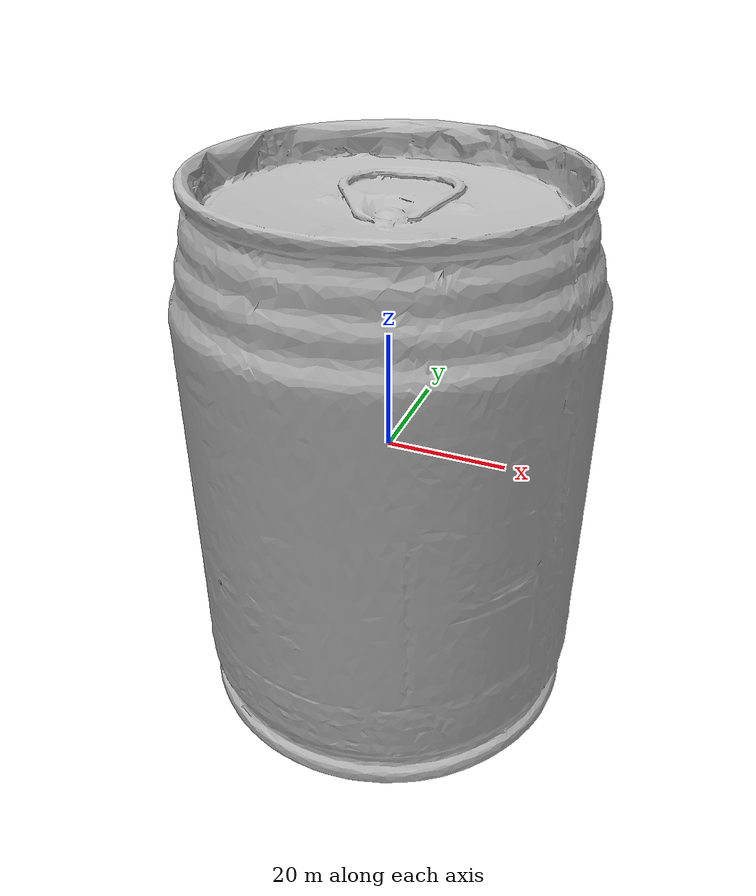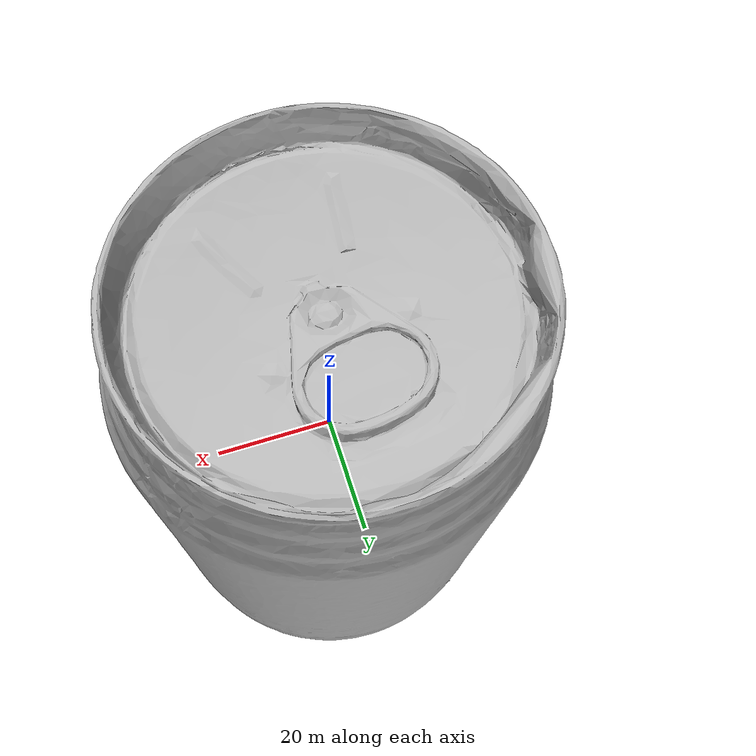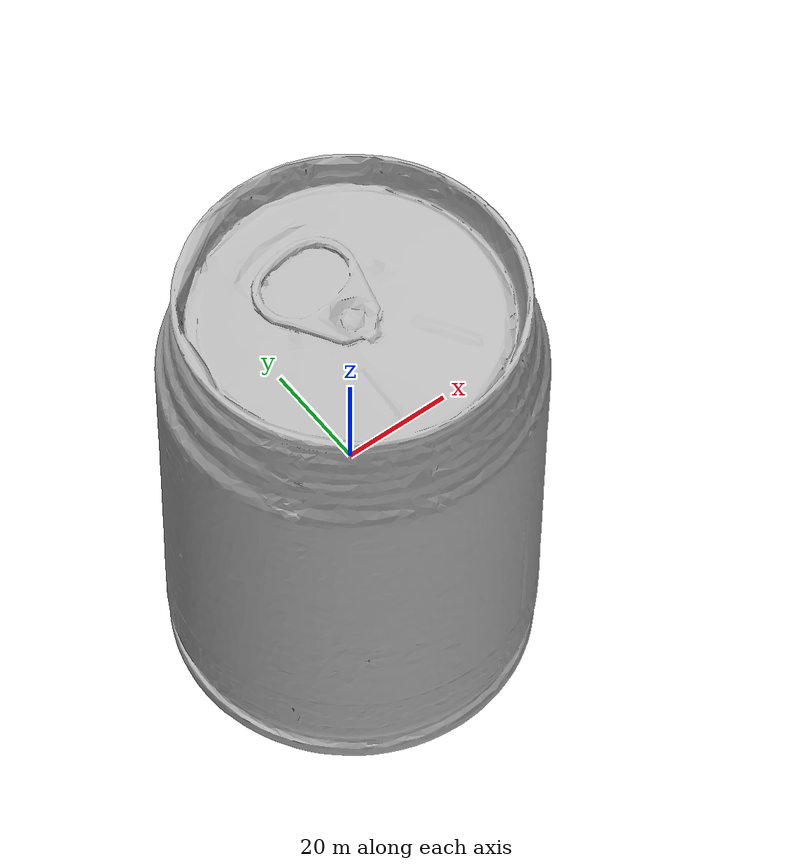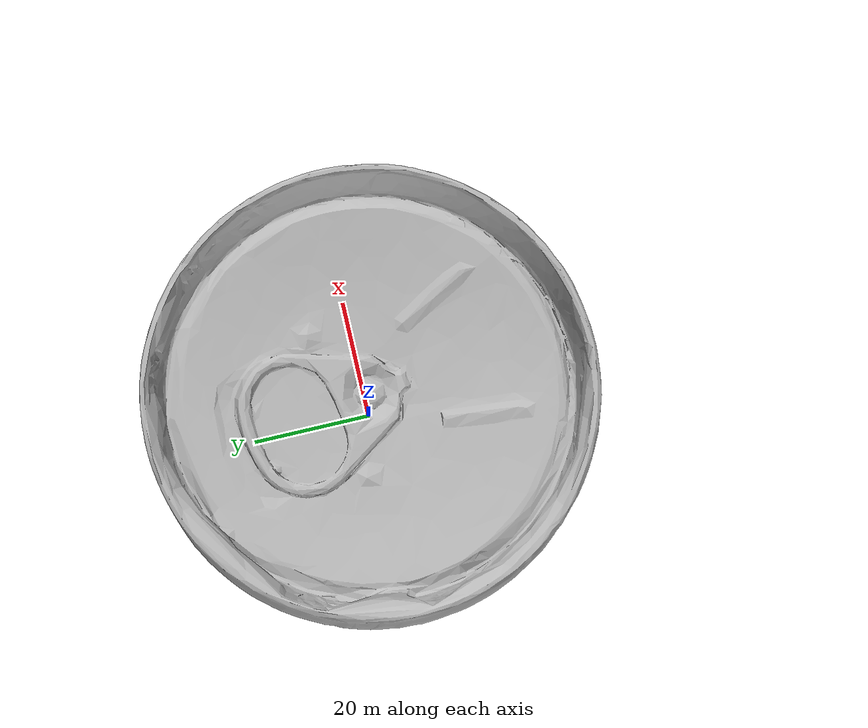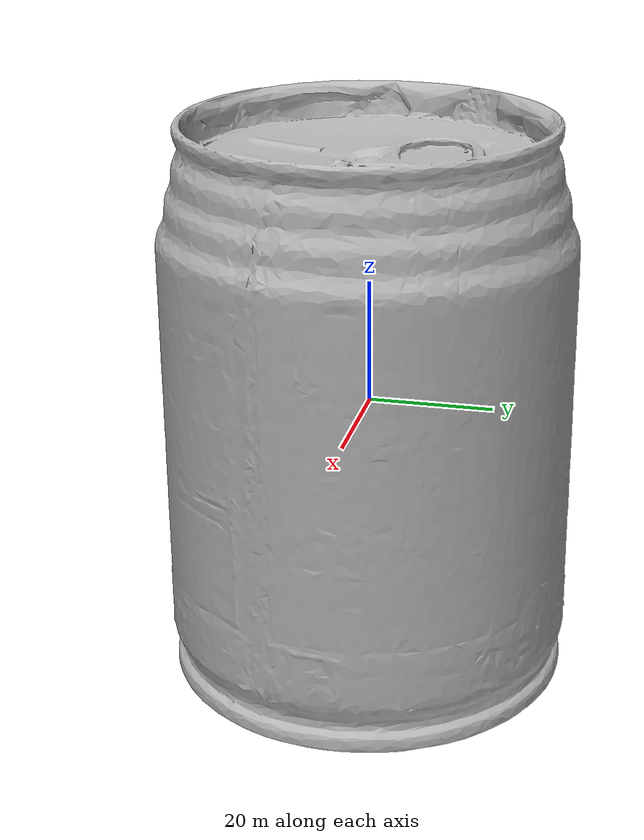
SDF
<sdf version="1.4">
 <world name="default">
  <light name="light1" type="point">
   <pose>0 0 1 0 0 0</pose>
   <diffuse>3 3 3 1</diffuse>
   <specular>3 3 3 1</specular>
  </light>
  <light name="light2" type="point">
   <pose>0 0.5 2 0 0 0</pose>
   <diffuse>1 1 1 1</diffuse>
   <specular>1 1 1 1</specular>
  </light>
  <light name="light3" type="point">
   <pose>0 0.5 2 0 0 0</pose>
   <diffuse>3 3 3 1</diffuse>
   <specular>3 3 3 1</specular>
  </light>
  <scene><ambient>0.7 0.7 0.7</ambient></scene>
  <model name="box1">
   <link name="link_box1">
    <collision name="default">
     <geometry>
      <mesh><uri>model://wooden_puzzle1/collision_meshes/collision.obj</uri><scale>1.0 1.0 1.0</scale></mesh>
     </geometry>
     <surface>
      <friction><ode><mu>0.5</mu><mu2>0.5</mu2></ode></friction>
      <contact><ode><max_vel>0</max_vel><min_depth>0.0001</min_depth><kp>1e8</kp></ode></contact>
     </surface>
    </collision>
    <visual name="default">
     <geometry>
      <mesh><uri>model://wooden_puzzle1/visual_meshes/visual.dae</uri><scale>1.0 1.0 1.0</scale></mesh>
     </geometry>
    </visual>
    <inertial>
     <mass>0.020629532635211945</mass>
     <pose>-0.0001735068071866408 7.972260937094688e-05 -9.191555000143126e-05 -0.07784798349428995 -0.2636160818751574 -0.552872324185161</pose>
     <inertia>
      <ixx>3.8922285e-06</ixx>
      <iyy>3.817302e-06</iyy>
      <izz>3.8628423e-06</izz>
      <ixy>0</ixy>
      <ixz>0</ixz>
      <iyz>0</iyz>
     </inertia>
    </inertial>
   </link>
   <pose>-0.0830574631690979 0.328857958316803 0.016802020370960236 0.010512081983216482 -0.009455384265388582 -1.569543781892002</pose>
  </model>
  <model name="box3">
   <link name="link_box3">
    <collision name="default">
     <geometry>
      <mesh><uri>model://wooden_puzzle2/collision_meshes/collision.obj</uri><scale>1.0 1.0 1.0</scale></mesh>
     </geometry>
     <surface>
      <friction><ode><mu>0.5</mu><mu2>0.5</mu2></ode></friction>
      <contact><ode><max_vel>0</max_vel><min_depth>0.0001</min_depth><kp>1e8</kp></ode></contact>
     </surface>
    </collision>
    <visual name="default">
     <geometry>
      <mesh><uri>model://wooden_puzzle2/visual_meshes/visual.dae</uri><scale>1.0 1.0 1.0</scale></mesh>
     </geometry>
    </visual>
    <inertial>
     <mass>0.05583015829324722</mass>
     <pose>2.7402536943554878e-05 4.997663199901581e-05 6.587122334167361e-05 -0.19203199902598803 0.6112853789707493 -0.6338693450254121</pose>
     <inertia>
      <ixx>1.0378231e-05</ixx>
      <iyy>1.06642165e-05</iyy>
      <izz>1.0512509e-05</izz>
      <ixy>0</ixy>
      <ixz>0</ixz>
      <iyz>0</iyz>
     </inertia>
    </inertial>
   </link>
   <pose>-0.03202073648571968 -0.1198330745100975 0.016917727887630463 0.020848355151532168 0.0007213462546874209 -0.8381139591288981</pose>
  </model>
  <model name="can1">
   <link name="link_can1">
    <collision name="default">
     <geometry>
      <mesh><uri>model://pepsi/collision_meshes/collision.obj</uri><scale>1.0 1.0 1.0</scale></mesh>
     </geometry>
     <surface>
      <friction><ode><mu>0.5</mu><mu2>0.5</mu2></ode></friction>
      <contact><ode><max_vel>0</max_vel><min_depth>0.0001</min_depth><kp>1e8</kp></ode></contact>
     </surface>
    </collision>
    <visual name="default">
     <geometry><mesh><uri>model://pepsi/visual_meshes/visual.dae</uri><scale>1.0 1.0 1.0</scale></mesh></geometry>
    </visual>
    <inertial>
     <mass>0.49348899722099304</mass>
     <pose>-7.5590331107378e-05 2.9931279641459696e-05 -0.0003384356386959553 -0.0010677622415870868 -0.0021735774955872703 0.5673701275352521</pose>
     <inertia>
      <ixx>0.0009831247</ixx>
      <iyy>0.0009824084</iyy>
      <izz>0.00020924417</izz>
      <ixy>0</ixy>
      <ixz>0</ixz>
      <iyz>0</iyz>
     </inertia>
    </inertial>
   </link>
   <pose>0.0013373123947530985 0.02424326352775097 0.07449635118246078 -1.962261197195149e-05 2.001345981244164e-06 2.555929531256068</pose>
  </model>
  <model name="can2">
   <link name="link_can2">
    <collision name="default">
     <geometry>
      <mesh><uri>model://redbull/collision_meshes/collision.obj</uri><scale>1.0 1.0 1.0</scale></mesh>
     </geometry>
     <surface>
      <friction><ode><mu>0.5</mu><mu2>0.5</mu2></ode></friction>
      <contact><ode><max_vel>0</max_vel><min_depth>0.0001</min_depth><kp>1e8</kp></ode></contact>
     </surface>
    </collision>
    <visual name="default">
     <geometry>
      <mesh><uri>model://redbull/visual_meshes/visual.dae</uri><scale>1.0 1.0 1.0</scale></mesh>
     </geometry>
    </visual>
    <inertial>
     <mass>0.3443465232849121</mass>
     <pose>-2.2127078409539536e-05 -0.00012659528874792159 -0.0006860987632535398 0.0011367237692686564 -0.010800964902263904 0.5859097418646089</pose>
     <inertia>
      <ixx>0.0003237599</ixx>
      <iyy>0.00032403314</iyy>
      <izz>0.00019212745</izz>
      <ixy>0</ixy>
      <ixz>0</ixz>
      <iyz>0</iyz>
     </inertia>
    </inertial>
   </link>
   <pose>0.14741499722003937 -0.3668472170829773 0.046385638415813446 -0.010488667428011514 0.007261307701585969 -2.5451065498994656</pose>
  </model>
  <physics type="ode">
   <max_contacts>50</max_contacts>
   <ode>
    <solver><type>quick</type><iters>75</iters></solver>
    <constraints>
     <contact_max_correcting_vel>0</contact_max_correcting_vel>
     <contact_surface_layer>0</contact_surface_layer>
    </constraints>
   </ode>
  </physics>
 </world>
</sdf>
